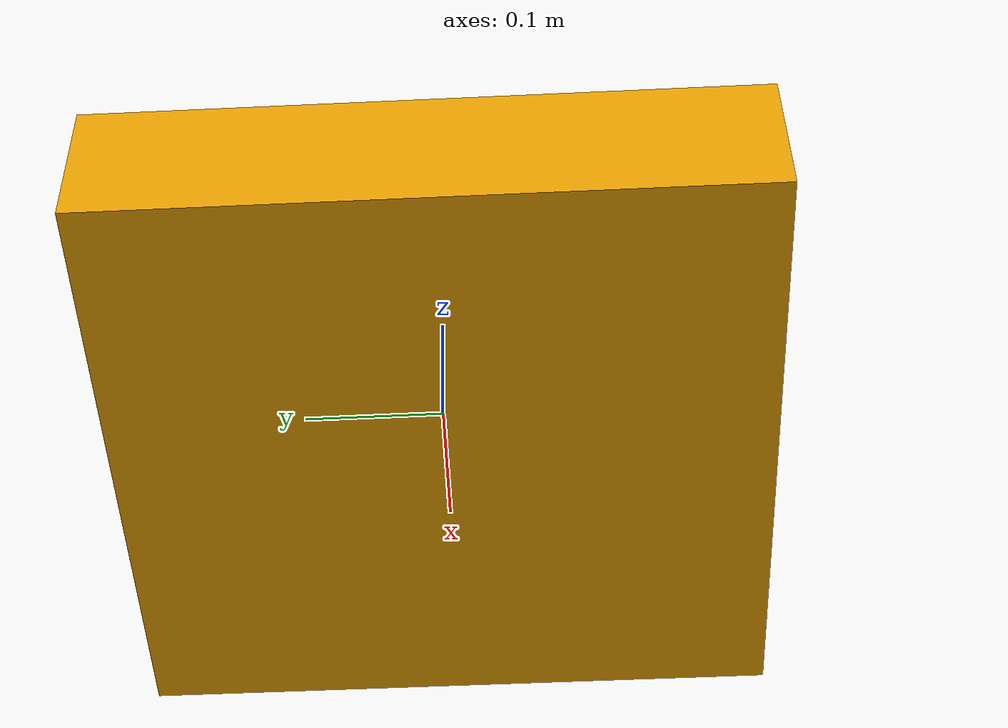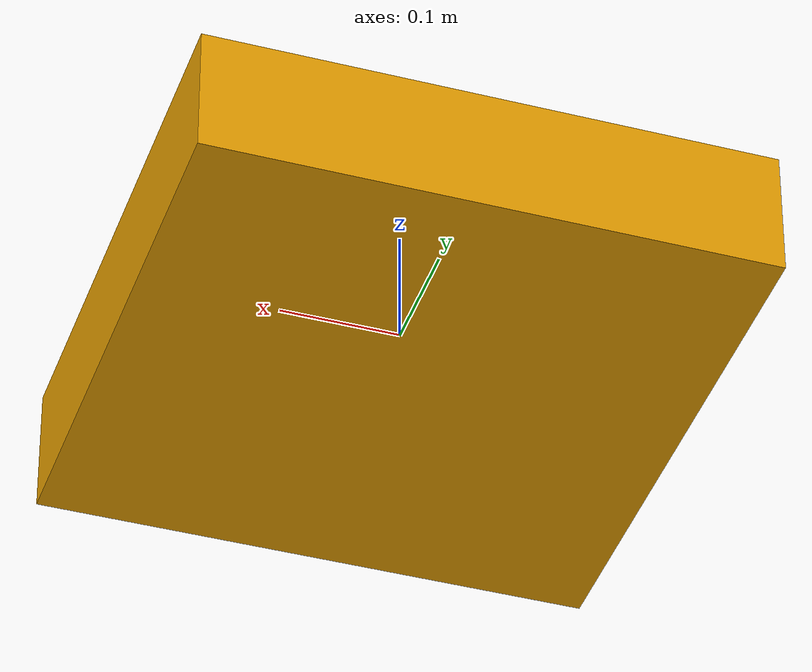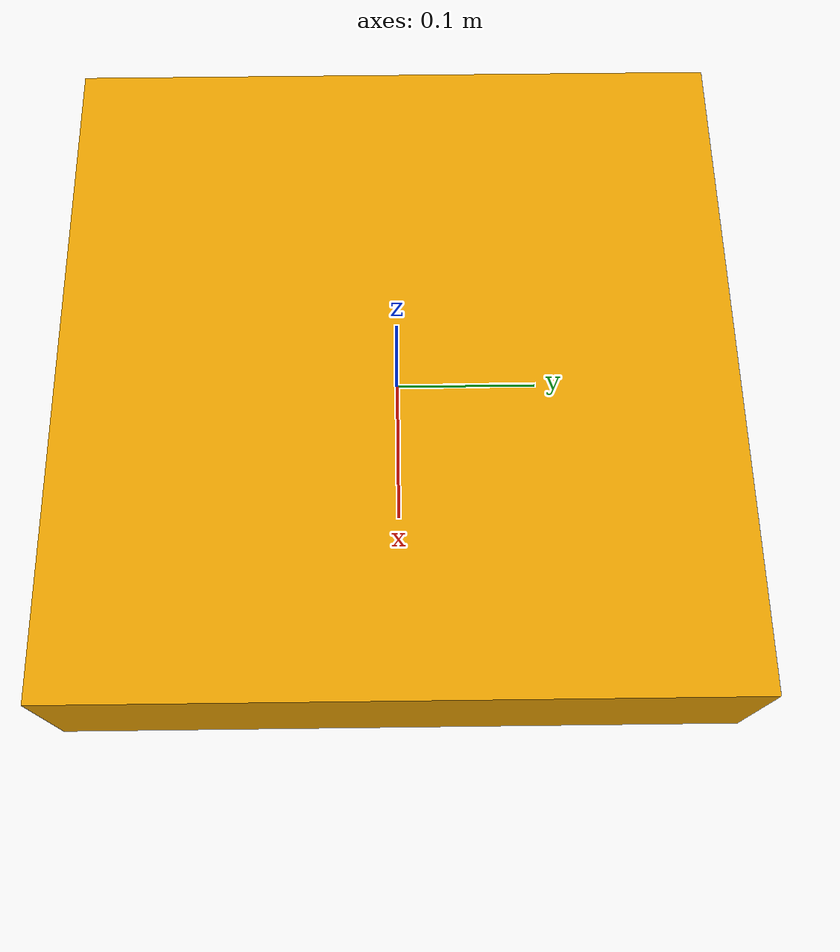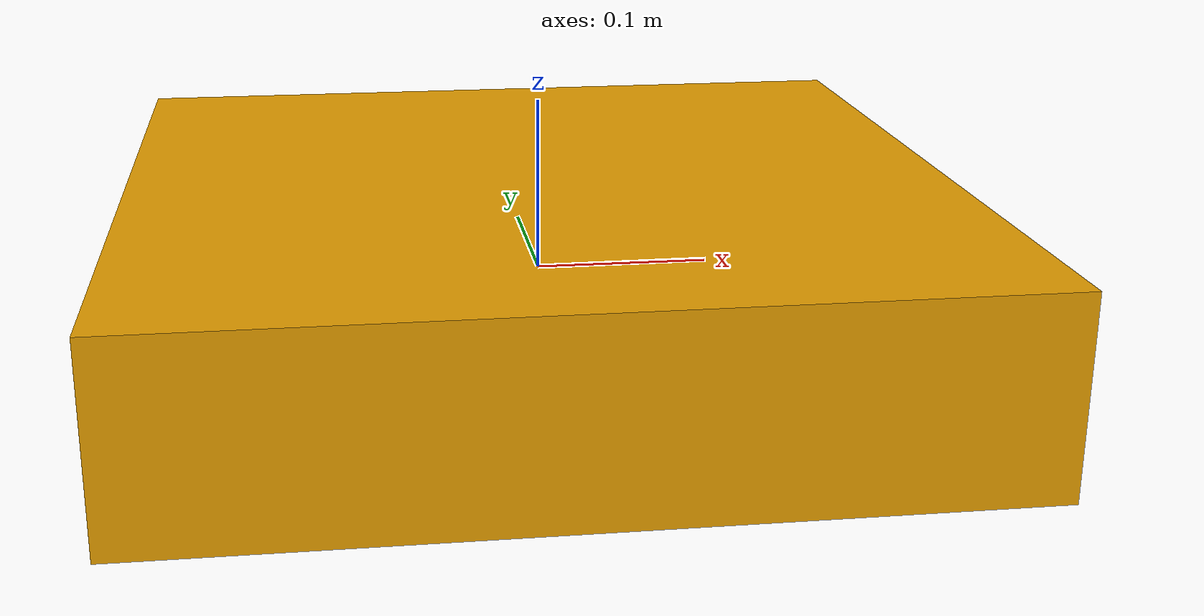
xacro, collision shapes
<?xml version="1.0" encoding="UTF-8"?>
<robot name="iris_base" xmlns:xacro="http://www.ros.org/wiki/xacro">

  <xacro:include filename="$(find uav)/urdf/common_properties.xacro"/>
  <!-- Main quadrotor link -->
    <link name="base_link">
      <inertial>
        <mass value="1.5" />
        <origin xyz="0 0 0" rpy="0 0 0" />
        <inertia ixx="0.029125" ixy="0" ixz="0" iyy="0.029125" iyz="0" izz="0.055225" />
      </inertial>

      <visual>
        <origin xyz="0 0 0" rpy="0 0 0" />
        <geometry>
          <mesh filename="package://uav/meshes/iris_base/iris.stl" scale="1 1 1"/>
        </geometry>
      </visual>

      <collision>
        <origin xyz="0 0 0" rpy="0 0 0" />
        <geometry>
          <box size="0.47 0.47 0.11" />
        </geometry>
      </collision>
    </link>

    <!-- IMU -->

    <link name="/imu_link">
      <origin xyz="0 0 0" rpy="0 0 0" />
      <inertial>
        <mass value="0.015" />
        <origin xyz="0 0 0" rpy="0 0 0" />
        <inertia ixx="1e-05" ixy="0" ixz="0" iyy="1e-05" iyz="0" izz="1e-05" />
      </inertial>
    </link>
    <joint name="/imu_joint" type="revolute">
      <parent link="base_link"/>
      <child link="/imu_link"/>
      <!-- Is the next line required? Why is this joint revolute? -->
      <limit effort="30" velocity="0.0" lower="0.0" upper="0.0" />
    </joint>

    <!-- gps sensor -->
    <xacro:include filename="$(find uav)/urdf/gps_sensor.urdf.xacro" />
    <xacro:gps_sensor name="gps" parent="base_link" >
      <origin xyz="0.03 0.03 0.03" rpy="0 0 0"/>
    </xacro:gps_sensor>

    <!-- Rotor descriptions -->

    <link name="rotor_0">
      <origin xyz="0.13 -0.22 0.023" rpy="0 0 0" />
      <inertial>
        <mass value="0.005" />
        <origin xyz="0 0 0" rpy="0 0 0" />
        <inertia ixx="9.75e-07" ixy="0" ixz="0" iyy="0.000273104" iyz="0" izz="0.000274004" />
      </inertial>

      <visual>
        <origin xyz="0 0 0" rpy="0 0 0" />
        <geometry>
          <mesh filename="package://uav/meshes/iris_base/iris_prop_ccw.dae" scale="1 1 1"/>
        </geometry>
        <material name="blue">
          <color rgba="0 0 .8 1"/>
        </material>
      </visual>

      <collision>
        <origin xyz="0 0 0" rpy="0 0 0" />
        <geometry>
          <cylinder length="0.005" radius="0.128"/>
        </geometry>
      </collision>
    </link>
    <joint name="rotor_0_joint" type="revolute">
      <parent link="base_link"/>
      <child link="rotor_0"/>
      <limit effort="1e+16" velocity="1e+16" />
    </joint>

    <link name="rotor_1">
      <origin xyz="-0.13 0.22 0.023" rpy="0 0 0" />
      <inertial>
        <mass value="0.005" />
        <origin xyz="0 0 0" rpy="0 0 0" />
        <inertia ixx="9.75e-07" ixy="0" ixz="0" iyy="0.000273104" iyz="0" izz="0.000274004" />
      </inertial>

      <visual>
        <origin xyz="0 0 0" rpy="0 0 0" />
        <geometry>
          <mesh filename="package://uav/meshes/iris_base/iris_prop_ccw.dae" scale="1 1 1"/>
        </geometry>
        <material name="black">
          <color rgba="0 0 0 1"/>
        </material>
      </visual>

      <collision>
        <origin xyz="0 0 0" rpy="0 0 0" />
        <geometry>
          <cylinder length="0.005" radius="0.128"/>
        </geometry>
      </collision>
    </link>
    <joint name="rotor_1_joint" type="revolute">
      <parent link="base_link"/>
      <child link="rotor_1"/>
      <limit effort="1e+16" velocity="1e+16" />
    </joint>

    <link name="rotor_2">
      <origin xyz="0.13 0.22 0.023" rpy="0 0 0" />
      <inertial>
        <mass value="0.005" />
        <origin xyz="0 0 0" rpy="0 0 0" />
        <inertia ixx="9.75e-07" ixy="0" ixz="0" iyy="0.000273104" iyz="0" izz="0.000274004" />
      </inertial>

      <visual>
        <origin xyz="0 0 0" rpy="0 0 0" />
        <geometry>
          <mesh filename="package://uav/meshes/iris_base/iris_prop_cw.dae" scale="1 1 1"/>
        </geometry>
        <material name="blue">
          <color rgba="0 0 .8 1"/>
        </material>
      </visual>

      <collision>
        <origin xyz="0 0 0" rpy="0 0 0" />
        <geometry>
          <cylinder length="0.005" radius="0.128"/>
        </geometry>
      </collision>
    </link>
    <joint name="rotor_2_joint" type="revolute">
      <parent link="base_link"/>
      <child link="rotor_2"/>
      <limit effort="1e+16" velocity="1e+16" />
    </joint>

    <link name="rotor_3">
      <origin xyz="-0.13 -0.22 0.023" rpy="0 0 0" />
      <inertial>
        <mass value="0.005" />
        <origin xyz="0 0 0" rpy="0 0 0" />
        <inertia ixx="9.75e-07" ixy="0" ixz="0" iyy="0.000273104" iyz="0" izz="0.000274004" />
      </inertial>

      <visual>
        <origin xyz="0 0 0" rpy="0 0 0" />
        <geometry>
          <mesh filename="package://uav/meshes/iris_base/iris_prop_cw.dae" scale="1 1 1"/>
        </geometry>
        <material name="black">
          <color rgba="0 0 0 1"/>
        </material>
      </visual>

      <collision>
        <origin xyz="0 0 0" rpy="0 0 0" />
        <geometry>
          <cylinder length="0.005" radius="0.128"/>
        </geometry>
      </collision>
    </link>
    <joint name="rotor_3_joint" type="revolute">
      <parent link="base_link"/>
      <child link="rotor_3"/>
      <limit effort="1e+16" velocity="1e+16" />
    </joint>

    <!-- Plugins (taken from px4 autopilot source code)-->

    <gazebo>
      <plugin name='rosbag' filename='libgazebo_multirotor_base_plugin.so'>
        <robotNamespace/>
        <linkName>base_link</linkName>
        <rotorVelocitySlowdownSim>10</rotorVelocitySlowdownSim>
      </plugin>

      <plugin name='rotors_gazebo_imu_plugin' filename='libgazebo_imu_plugin.so'>
        <robotNamespace/>
        <linkName>/imu_link</linkName>
        <imuTopic>/imu</imuTopic>
        <gyroscopeNoiseDensity>0.00018665</gyroscopeNoiseDensity>
        <gyroscopeRandomWalk>3.8785e-05</gyroscopeRandomWalk>
        <gyroscopeBiasCorrelationTime>1000.0</gyroscopeBiasCorrelationTime>
        <gyroscopeTurnOnBiasSigma>0.0087</gyroscopeTurnOnBiasSigma>
        <accelerometerNoiseDensity>0.00186</accelerometerNoiseDensity>
        <accelerometerRandomWalk>0.006</accelerometerRandomWalk>
        <accelerometerBiasCorrelationTime>300.0</accelerometerBiasCorrelationTime>
        <accelerometerTurnOnBiasSigma>0.196</accelerometerTurnOnBiasSigma>
      </plugin>

      <plugin name='front_right_motor_model' filename='libgazebo_motor_model.so'>
        <robotNamespace/>
        <jointName>rotor_0_joint</jointName>
        <linkName>rotor_0</linkName>
        <turningDirection>ccw</turningDirection>
        <timeConstantUp>0.0125</timeConstantUp>
        <timeConstantDown>0.025</timeConstantDown>
        <maxRotVelocity>1100</maxRotVelocity>
        <motorConstant>5.84e-06</motorConstant>
        <momentConstant>0.06</momentConstant>
        <commandSubTopic>/gazebo/command/motor_speed</commandSubTopic>
        <motorNumber>0</motorNumber>
        <rotorDragCoefficient>0.000175</rotorDragCoefficient>
        <rollingMomentCoefficient>1e-06</rollingMomentCoefficient>
        <motorSpeedPubTopic>/motor_speed/0</motorSpeedPubTopic>
        <rotorVelocitySlowdownSim>10</rotorVelocitySlowdownSim>
      </plugin>

      <plugin name='back_left_motor_model' filename='libgazebo_motor_model.so'>
        <robotNamespace/>
        <jointName>rotor_1_joint</jointName>
        <linkName>rotor_1</linkName>
        <turningDirection>ccw</turningDirection>
        <timeConstantUp>0.0125</timeConstantUp>
        <timeConstantDown>0.025</timeConstantDown>
        <maxRotVelocity>1100</maxRotVelocity>
        <motorConstant>5.84e-06</motorConstant>
        <momentConstant>0.06</momentConstant>
        <commandSubTopic>/gazebo/command/motor_speed</commandSubTopic>
        <motorNumber>1</motorNumber>
        <rotorDragCoefficient>0.000175</rotorDragCoefficient>
        <rollingMomentCoefficient>1e-06</rollingMomentCoefficient>
        <motorSpeedPubTopic>/motor_speed/1</motorSpeedPubTopic>
        <rotorVelocitySlowdownSim>10</rotorVelocitySlowdownSim>
      </plugin>

      <plugin name='front_left_motor_model' filename='libgazebo_motor_model.so'>
        <robotNamespace/>
        <jointName>rotor_2_joint</jointName>
        <linkName>rotor_2</linkName>
        <turningDirection>cw</turningDirection>
        <timeConstantUp>0.0125</timeConstantUp>
        <timeConstantDown>0.025</timeConstantDown>
        <maxRotVelocity>1100</maxRotVelocity>
        <motorConstant>5.84e-06</motorConstant>
        <momentConstant>0.06</momentConstant>
        <commandSubTopic>/gazebo/command/motor_speed</commandSubTopic>
        <motorNumber>2</motorNumber>
        <rotorDragCoefficient>0.000175</rotorDragCoefficient>
        <rollingMomentCoefficient>1e-06</rollingMomentCoefficient>
        <motorSpeedPubTopic>/motor_speed/2</motorSpeedPubTopic>
        <rotorVelocitySlowdownSim>10</rotorVelocitySlowdownSim>
      </plugin>

      <plugin name='back_right_motor_model' filename='libgazebo_motor_model.so'>
        <robotNamespace/>
        <jointName>rotor_3_joint</jointName>
        <linkName>rotor_3</linkName>
        <turningDirection>cw</turningDirection>
        <timeConstantUp>0.0125</timeConstantUp>
        <timeConstantDown>0.025</timeConstantDown>
        <maxRotVelocity>1100</maxRotVelocity>
        <motorConstant>5.84e-06</motorConstant>
        <momentConstant>0.06</momentConstant>
        <commandSubTopic>/gazebo/command/motor_speed</commandSubTopic>
        <motorNumber>3</motorNumber>
        <rotorDragCoefficient>0.000175</rotorDragCoefficient>
        <rollingMomentCoefficient>1e-06</rollingMomentCoefficient>
        <motorSpeedPubTopic>/motor_speed/3</motorSpeedPubTopic>
        <rotorVelocitySlowdownSim>10</rotorVelocitySlowdownSim>
      </plugin>

      <plugin name='groundtruth_plugin' filename='libgazebo_groundtruth_plugin.so'>
        <robotNamespace/>
      </plugin>

      <plugin name='magnetometer_plugin' filename='libgazebo_magnetometer_plugin.so'>
        <robotNamespace/>
        <pubRate>100</pubRate>
        <noiseDensity>0.0004</noiseDensity>
        <randomWalk>6.4e-06</randomWalk>
        <biasCorrelationTime>600</biasCorrelationTime>
        <magTopic>/mag</magTopic>
      </plugin>

      <plugin name='barometer_plugin' filename='libgazebo_barometer_plugin.so'>
        <robotNamespace/>
        <pubRate>50</pubRate>
        <baroTopic>/baro</baroTopic>
        <baroDriftPaPerSec>0</baroDriftPaPerSec>
      </plugin>
      <plugin name='mavlink_interface' filename='libgazebo_mavlink_interface.so'>
        <robotNamespace/>
        <imuSubTopic>/imu</imuSubTopic>
        <magSubTopic>/mag</magSubTopic>
        <baroSubTopic>/baro</baroSubTopic>
        <mavlink_addr>INADDR_ANY</mavlink_addr>
        <mavlink_tcp_port>4560</mavlink_tcp_port>
        <mavlink_udp_port>14560</mavlink_udp_port>
        <serialEnabled>0</serialEnabled>
        <serialDevice>/dev/ttyACM0</serialDevice>
        <baudRate>921600</baudRate>
        <qgc_addr>INADDR_ANY</qgc_addr>
        <qgc_udp_port>14550</qgc_udp_port>
        <sdk_addr>INADDR_ANY</sdk_addr>
        <sdk_udp_port>14540</sdk_udp_port>
        <hil_mode>0</hil_mode>
        <hil_state_level>0</hil_state_level>
        <send_vision_estimation>0</send_vision_estimation>
        <send_odometry>1</send_odometry>
        <enable_lockstep>1</enable_lockstep>
        <use_tcp>1</use_tcp>
        <motorSpeedCommandPubTopic>/gazebo/command/motor_speed</motorSpeedCommandPubTopic>
        <control_channels>
          <channel name='rotor1'>
            <input_index>0</input_index>
            <input_offset>0</input_offset>
            <input_scaling>1000</input_scaling>
            <zero_position_disarmed>0</zero_position_disarmed>
            <zero_position_armed>100</zero_position_armed>
            <joint_control_type>velocity</joint_control_type>
          </channel>
          <channel name='rotor2'>
            <input_index>1</input_index>
            <input_offset>0</input_offset>
            <input_scaling>1000</input_scaling>
            <zero_position_disarmed>0</zero_position_disarmed>
            <zero_position_armed>100</zero_position_armed>
            <joint_control_type>velocity</joint_control_type>
          </channel>
          <channel name='rotor3'>
            <input_index>2</input_index>
            <input_offset>0</input_offset>
            <input_scaling>1000</input_scaling>
            <zero_position_disarmed>0</zero_position_disarmed>
            <zero_position_armed>100</zero_position_armed>
            <joint_control_type>velocity</joint_control_type>
          </channel>
          <channel name='rotor4'>
            <input_index>3</input_index>
            <input_offset>0</input_offset>
            <input_scaling>1000</input_scaling>
            <zero_position_disarmed>0</zero_position_disarmed>
            <zero_position_armed>100</zero_position_armed>
            <joint_control_type>velocity</joint_control_type>
          </channel>
          <channel name='rotor5'>
            <input_index>4</input_index>
            <input_offset>1</input_offset>
            <input_scaling>324.6</input_scaling>
            <zero_position_disarmed>0</zero_position_disarmed>
            <zero_position_armed>0</zero_position_armed>
            <joint_control_type>velocity</joint_control_type>
            <joint_control_pid>
              <p>0.1</p>
              <i>0</i>
              <d>0</d>
              <iMax>0.0</iMax>
              <iMin>0.0</iMin>
              <cmdMax>2</cmdMax>
              <cmdMin>-2</cmdMin>
            </joint_control_pid>
            <joint_name>zephyr_delta_wing::propeller_joint</joint_name>
          </channel>
          <channel name='rotor6'>
            <input_index>5</input_index>
            <input_offset>0</input_offset>
            <input_scaling>0.524</input_scaling>
            <zero_position_disarmed>0</zero_position_disarmed>
            <zero_position_armed>0</zero_position_armed>
            <joint_control_type>position</joint_control_type>
            <joint_name>zephyr_delta_wing::flap_left_joint</joint_name>
            <joint_control_pid>
              <p>10.0</p>
              <i>0</i>
              <d>0</d>
              <iMax>0</iMax>
              <iMin>0</iMin>
              <cmdMax>20</cmdMax>
              <cmdMin>-20</cmdMin>
            </joint_control_pid>
          </channel>
          <channel name='rotor7'>
            <input_index>6</input_index>
            <input_offset>0</input_offset>
            <input_scaling>0.524</input_scaling>
            <zero_position_disarmed>0</zero_position_disarmed>
            <zero_position_armed>0</zero_position_armed>
            <joint_control_type>position</joint_control_type>
            <joint_name>zephyr_delta_wing::flap_right_joint</joint_name>
            <joint_control_pid>
              <p>10.0</p>
              <i>0</i>
              <d>0</d>
              <iMax>0</iMax>
              <iMin>0</iMin>
              <cmdMax>20</cmdMax>
              <cmdMin>-20</cmdMin>
            </joint_control_pid>
          </channel>
          <channel name='rotor8'>
            <input_index>7</input_index>
            <input_offset>0</input_offset>
            <input_scaling>0.524</input_scaling>
            <zero_position_disarmed>0</zero_position_disarmed>
            <zero_position_armed>0</zero_position_armed>
            <joint_control_type>position</joint_control_type>
          </channel>
        </control_channels>
      </plugin>

    </gazebo>

</robot>

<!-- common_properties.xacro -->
<robot name="xacro_properties" xmlns:xacro="http://ros.org/wiki/xacro">
  <xacro:property name="M_PI" value="3.1415926535897931"/>

  <!-- Init colour -->
  <material name="black">
      <color rgba="0.0 0.0 0.0 1.0"/>
  </material>

  <material name="dark">
    <color rgba="0.3 0.3 0.3 1.0"/>
  </material>

  <material name="light_black">
    <color rgba="0.4 0.4 0.4 1.0"/>
  </material>

  <material name="blue">
    <color rgba="0.0 0.0 0.8 1.0"/>
  </material>

  <material name="green">
    <color rgba="0.0 0.8 0.0 1.0"/>
  </material>

  <material name="grey">
    <color rgba="0.5 0.5 0.5 1.0"/>
  </material>

  <material name="orange">
    <color rgba="${255/255} ${108/255} ${10/255} 1.0"/>
  </material>

  <material name="brown">
    <color rgba="${222/255} ${207/255} ${195/255} 1.0"/>
  </material>

  <material name="silver">
    <color rgba="${192/255} ${192/255} ${192/255} 1.0"/>
  </material>

  <material name="red">
    <color rgba="0.8 0.0 0.0 1.0"/>
  </material>

  <material name="white">
    <color rgba="1.0 1.0 1.0 1.0"/>
  </material>
</robot>

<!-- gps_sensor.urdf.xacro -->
<robot xmlns:xacro="http://www.ros.org/wiki/xacro">

<xacro:macro name="gps_sensor" params="name parent *origin">

  <joint name="${name}_joint" type="fixed">
    <xacro:insert_block name="origin" />
    <parent link="${parent}"/>
    <child link="${name}_link"/>
  </joint>

  <link name="${name}_link">
    <inertial>
      <mass value="0.01" />
      <origin xyz="0 0 0" rpy="0 0 0" />
      <inertia ixx="2.1733e-06" ixy="0" ixz="0" iyy="2.1733e-06" iyz="0" izz="1.8e-07" />
    </inertial>
    <visual>
      <origin xyz="0 0 0" rpy="0 0 0" />
      <geometry>
        <cylinder length="0.002" radius="0.01"/>
      </geometry>
    </visual>
    <collision>
      <origin xyz="0 0 0" rpy="0 0 0" />
      <geometry>
        <cylinder length="0.002" radius="0.01"/>
      </geometry>
    </collision>
  </link>

   <!-- Gazebo sensor plugin -->
  <gazebo reference="${name}_link">
    <sensor type="gps" name="${name}">
      <pose>0 0 0 0 0 0</pose>
      <plugin name='gps_plugin' filename='libgazebo_gps_plugin.so'>
        <robotNamespace/>
        <gpsNoise>1</gpsNoise>
        <gpsXYRandomWalk>2.0</gpsXYRandomWalk>
        <gpsZRandomWalk>4.0</gpsZRandomWalk>
        <gpsXYNoiseDensity>0.0002</gpsXYNoiseDensity>
        <gpsZNoiseDensity>0.0004</gpsZNoiseDensity>
        <gpsVXYNoiseDensity>0.2</gpsVXYNoiseDensity>
        <gpsVZNoiseDensity>0.4</gpsVZNoiseDensity>
      </plugin>
    </sensor>
  </gazebo>
</xacro:macro>
</robot>
